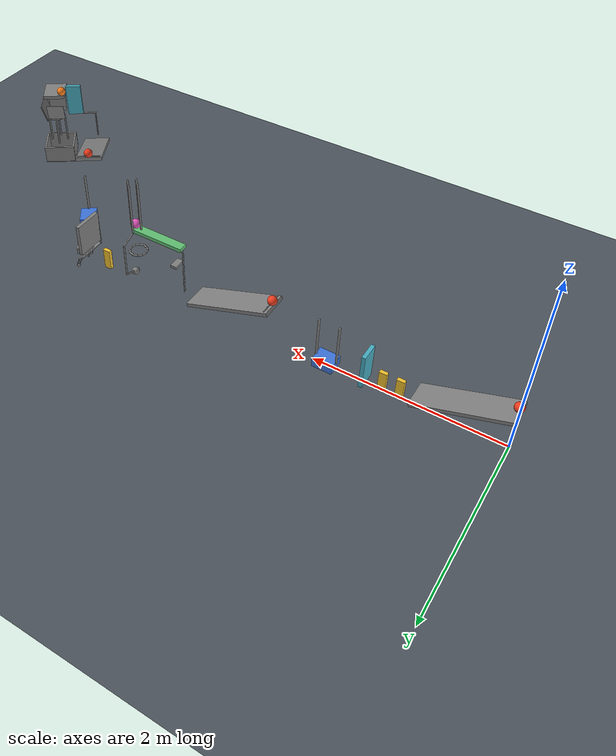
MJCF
<mujoco model="chain_reaction_revised">
  <!-- Complete construction, not simulation-validated. -->
  <!-- Contact override applies friction 0.70 consistently to every contact. -->
  <!-- Contact damping approximates restitution 0.05 rather than specifying it exactly. -->
  <compiler angle="degree" autolimits="true" inertiafromgeom="true"/>
  <option timestep="0.002" gravity="0 0 -9.81" integrator="implicitfast" solver="Newton" iterations="100" tolerance="1e-10" cone="elliptic" o_friction="0.70 0.70 0.005 0.0001 0.0001" o_solref="0.006 0.69" o_solimp="0.95 0.99 0.001">
    <flag override="enable"/>
  </option>
  <size njmax="4000" nconmax="1000"/>

  <worldbody>
    <light name="overhead_light" pos="3 -2 8" dir="0 0 -1"/>
    <camera name="overview" pos="8 -10 7" xyaxes="0.8 0.6 0 -0.3 0.4 0.8660254" fovy="45"/>
    <geom name="floor" type="plane" pos="0 0 0" size="12 8 0.1" rgba="0.30 0.33 0.36 1"/>

    <!-- Each main ramp surface is 1.00 by 0.30 m, inclined 20 degrees. -->
    <!-- All three downhill surface endpoints are at z = 0.15 m. -->
    <body name="ramp1" pos="0.469846 0 0.321010" quat="0.984807753 0 0.173648178 0">
      <geom name="ramp1_surface" type="box" pos="0 0 -0.02" size="0.50 0.15 0.02"/>
    </body>
    <body name="ball1" pos="0.017101 0 0.539005">
      <freejoint name="ball1_free"/>
      <geom name="ball1_sphere" type="sphere" size="0.05" mass="0.20" condim="6" rgba="0.95 0.24 0.12 1"/>
    </body>

    <!-- Ramp1 endpoint to domino1 front face: 0.10 m. -->
    <body name="domino1" pos="1.079693 0 0.12">
      <freejoint name="domino1_free"/>
      <geom name="domino1_box" type="box" size="0.04 0.02 0.12" mass="0.25" rgba="0.95 0.76 0.18 1"/>
    </body>
    <!-- Domino centers are 0.18 m apart. -->
    <body name="domino2" pos="1.259693 0 0.12">
      <freejoint name="domino2_free"/>
      <geom name="domino2_box" type="box" size="0.04 0.02 0.12" mass="0.25" rgba="0.95 0.76 0.18 1"/>
    </body>

    <body name="flap1" pos="1.439693 0 0.02">
      <joint name="flap1_hinge" type="hinge" axis="0 1 0" damping="0.04" limited="true" range="0 65" solreflimit="0.004 1" solimplimit="0.99 0.999 0.0001"/>
      <geom name="flap1_panel" type="box" pos="0 0 0.20" size="0.02 0.10 0.20" mass="0.30" rgba="0.28 0.68 0.76 1"/>
    </body>

    <!-- Cart box and lightweight strikers together have mass 0.50 kg. -->
    <!-- The slide joint represents an ideal horizontal bearing. -->
    <body name="cart1" pos="1.859693 0 0.051">
      <joint name="cart1_slide" type="slide" axis="1 0 0" damping="0.20" limited="true" range="0 0.48" solreflimit="0.004 1"/>
      <geom name="cart1_box" type="box" size="0.11 0.09 0.05" mass="0.48" rgba="0.24 0.46 0.86 1"/>
      <geom name="cart1_rear_striker" type="capsule" fromto="-0.11 0 0.03 -0.11 0 0.50" size="0.012" mass="0.01"/>
      <geom name="cart1_front_striker" type="capsule" fromto="0.11 0 0.03 0.11 0 0.50" size="0.012" mass="0.01"/>
    </body>

    <!-- Small fixed detent retains ball2 until cart1 arrives. -->
    <body name="ramp2" pos="2.934438 0 0.321010" quat="0.984807753 0 0.173648178 0">
      <geom name="ramp2_surface" type="box" pos="0 0 -0.02" size="0.50 0.15 0.02"/>
      <geom name="ramp2_detent" type="capsule" fromto="-0.465359 -0.13 0.006 -0.465359 0.13 0.006" size="0.006"/>
    </body>
    <!-- Nominal cart1 travel to first contact: 0.45 m. -->
    <body name="ball2" pos="2.481693 0 0.539005">
      <freejoint name="ball2_free"/>
      <geom name="ball2_sphere" type="sphere" size="0.05" mass="0.20" condim="6" rgba="0.95 0.24 0.12 1"/>
    </body>

    <!-- The auxiliary left-end paddle bridges the ramp-to-lever height difference. -->
    <!-- Its front surface is 0.12 m beyond ramp2's downhill endpoint. -->
    <!-- Beam and paddle together have mass 0.50 kg. -->
    <body name="lever1" pos="3.824285 0 0.72">
      <joint name="lever1_hinge" type="hinge" axis="0 -1 0" damping="0.04" limited="true" range="0 45" solreflimit="0.004 1" solimplimit="0.99 0.999 0.0001"/>
      <geom name="lever1_beam" type="box" size="0.30 0.05 0.02" mass="0.485" rgba="0.38 0.75 0.45 1"/>
      <geom name="lever1_input_paddle" type="capsule" fromto="-0.292 0 -0.02 -0.292 0 -0.58" size="0.008" mass="0.015"/>
    </body>
    <body name="lever1_lower_stop" pos="3.612153 0 0.478730">
      <geom name="lever1_lower_stop_box" type="box" size="0.035 0.065 0.015"/>
    </body>

    <body name="ball3" pos="4.104285 0 0.79">
      <freejoint name="ball3_free"/>
      <geom name="ball3_sphere" type="sphere" size="0.05" mass="0.20" condim="6" contype="2" conaffinity="3" rgba="0.88 0.34 0.74 1"/>
    </body>

    <!-- Launch rails interact with ball3, not with the lever beneath it. -->
    <body name="launch_guide" pos="4.104285 0 0.79">
      <geom name="launch_guide_x_positive" type="capsule" fromto="0.061 0 -0.06 0.061 0 0.51" size="0.01" contype="2" conaffinity="2"/>
      <geom name="launch_guide_x_negative" type="capsule" fromto="-0.061 0 -0.06 -0.061 0 0.51" size="0.01" contype="2" conaffinity="2"/>
      <geom name="launch_guide_y_positive" type="capsule" fromto="0 0.061 -0.06 0 0.061 0.51" size="0.01" contype="2" conaffinity="2"/>
      <geom name="launch_guide_y_negative" type="capsule" fromto="0 -0.061 -0.06 0 -0.061 0.51" size="0.01" contype="2" conaffinity="2"/>
    </body>

    <!-- Polygonal horizontal ring: 0.09 m centerline apothem and 0.01 m tube radius. -->
    <!-- Minimum clear diameter is 0.16 m; its plane is 0.35 m below ball3 initially. -->
    <body name="ring1" pos="4.104285 0 0.44">
      <geom name="ring1_segment_01" type="capsule" fromto="0.093175 0 0 0.080692 0.046587 0" size="0.01"/>
      <geom name="ring1_segment_02" type="capsule" fromto="0.080692 0.046587 0 0.046587 0.080692 0" size="0.01"/>
      <geom name="ring1_segment_03" type="capsule" fromto="0.046587 0.080692 0 0 0.093175 0" size="0.01"/>
      <geom name="ring1_segment_04" type="capsule" fromto="0 0.093175 0 -0.046587 0.080692 0" size="0.01"/>
      <geom name="ring1_segment_05" type="capsule" fromto="-0.046587 0.080692 0 -0.080692 0.046587 0" size="0.01"/>
      <geom name="ring1_segment_06" type="capsule" fromto="-0.080692 0.046587 0 -0.093175 0 0" size="0.01"/>
      <geom name="ring1_segment_07" type="capsule" fromto="-0.093175 0 0 -0.080692 -0.046587 0" size="0.01"/>
      <geom name="ring1_segment_08" type="capsule" fromto="-0.080692 -0.046587 0 -0.046587 -0.080692 0" size="0.01"/>
      <geom name="ring1_segment_09" type="capsule" fromto="-0.046587 -0.080692 0 0 -0.093175 0" size="0.01"/>
      <geom name="ring1_segment_10" type="capsule" fromto="0 -0.093175 0 0.046587 -0.080692 0" size="0.01"/>
      <geom name="ring1_segment_11" type="capsule" fromto="0.046587 -0.080692 0 0.080692 -0.046587 0" size="0.01"/>
      <geom name="ring1_segment_12" type="capsule" fromto="0.080692 -0.046587 0 0.093175 0 0" size="0.01"/>
    </body>

    <!-- Pivot-to-bob distance: 0.50 m; total rigid-body mass: 0.35 kg. -->
    <!-- The transverse dogleg keeps the rod outside ring1 during the swing. -->
    <!-- Ball3's nominal first bob contact is at center height 0.19 m. -->
    <body name="pendulum1" pos="4.167925 0 0.626360">
      <joint name="pendulum1_hinge" type="hinge" axis="0 -1 0" damping="0.04" limited="true" range="0 40" solreflimit="0.004 1" solimplimit="0.99 0.999 0.0001"/>
      <geom name="pendulum1_upper_link" type="capsule" fromto="0 0 0 0 0.15 -0.06" size="0.009" mass="0.04"/>
      <geom name="pendulum1_middle_link" type="capsule" fromto="0 0.15 -0.06 0 0.15 -0.44" size="0.009" mass="0.24"/>
      <geom name="pendulum1_lower_link" type="capsule" fromto="0 0.15 -0.44 0 0 -0.50" size="0.009" mass="0.04"/>
      <geom name="pendulum1_bob" type="sphere" pos="0 0 -0.50" size="0.04" mass="0.03"/>
    </body>

    <!-- Nominal bob contact occurs after 0.32 m of arc, before the 40-degree limit. -->
    <body name="domino3" pos="4.546523 0 0.12">
      <freejoint name="domino3_free"/>
      <geom name="domino3_box" type="box" size="0.04 0.02 0.12" mass="0.25" rgba="0.95 0.76 0.18 1"/>
    </body>

    <!-- Door panel envelope: 0.42 m high, 0.32 m wide, 0.04 m thick. -->
    <!-- A horizontal release slot occupies z = 0.14 to 0.18 m. -->
    <!-- Panel bottom clears the block rails; the low knocker strikes below the block center. -->
    <!-- All door geometry together has mass 0.45 kg. -->
    <body name="door1" pos="4.786523 -0.16 0.34">
      <joint name="door1_hinge" type="hinge" axis="0 0 -1" damping="0.04" limited="true" range="0 70" solreflimit="0.004 1" solimplimit="0.99 0.999 0.0001"/>
      <geom name="door1_lower_panel" type="box" pos="0 0.16 -0.205" size="0.02 0.16 0.005" mass="0.010"/>
      <geom name="door1_upper_panel" type="box" pos="0 0.16 0.025" size="0.02 0.16 0.185" mass="0.360"/>
      <geom name="door1_edge_frame" type="box" pos="0 0.005 0" size="0.02 0.005 0.21" mass="0.030"/>
      <geom name="door1_knocker_strut" type="capsule" fromto="0 0.18 -0.21 0.03 0.18 -0.295" size="0.003" mass="0.010"/>
      <geom name="door1_knocker" type="sphere" pos="0.03 0.18 -0.295" size="0.01" mass="0.015"/>
      <geom name="door1_hook_arm" type="capsule" fromto="0 0.31 -0.21 0.015 0.36 -0.29" size="0.006" mass="0.010"/>
      <geom name="door1_hook" type="sphere" pos="0.015 0.36 -0.29" size="0.015" mass="0.015"/>
    </body>

    <!-- Domino3 front face to release-bar front surface: 0.18 m. -->
    <!-- The latch initially holds the motor load and releases when its crossbar is struck. -->
    <body name="door_latch" pos="4.824523 0.20 0.01">
      <joint name="door_latch_hinge" type="hinge" axis="0 1 0" damping="0.04" frictionloss="0.25" limited="true" range="0 90" solreflimit="0.004 1"/>
      <geom name="door_latch_pin" type="sphere" pos="0 0 0.04" size="0.008" mass="0.01"/>
      <geom name="door_latch_shank" type="capsule" fromto="0 0 0.04 -0.048 0 0.15" size="0.006" mass="0.04"/>
      <geom name="door_latch_release_bar" type="capsule" fromto="-0.048 -0.225 0.15 -0.048 0 0.15" size="0.01" mass="0.10"/>
    </body>

    <!-- Block and channel are aligned with cart2's slide direction. -->
    <body name="block1" pos="4.954492 -0.087101 0.06" quat="0.887010833 0 0 -0.461748613">
      <freejoint name="block1_free"/>
      <geom name="block1_cube" type="box" size="0.06 0.06 0.06" mass="0.35" rgba="0.79 0.50 0.24 1"/>
    </body>
    <!-- Channel width is 0.124 m; walls terminate before cart2's initial rear face. -->
    <body name="block1_guide" pos="4.954492 -0.087101 0" quat="0.887010833 0 0 -0.461748613">
      <geom name="block1_guide_positive_wall" type="box" pos="0.160 0.072 0.04" size="0.235 0.010 0.040"/>
      <geom name="block1_guide_negative_wall" type="box" pos="0.160 -0.072 0.04" size="0.235 0.010 0.040"/>
    </body>

    <!-- Initial block-front to cart-rear gap along the channel: 0.35 m. -->
    <body name="cart2" pos="5.252751 -0.513060 0.051" quat="0.887010833 0 0 -0.461748613">
      <joint name="cart2_slide" type="slide" axis="1 0 0" damping="0.20" limited="true" range="0 0.45" solreflimit="0.004 1"/>
      <geom name="cart2_box" type="box" size="0.11 0.09 0.05" mass="0.49" rgba="0.24 0.46 0.86 1"/>
      <geom name="cart2_front_striker" type="capsule" fromto="0.11 0 0.03 0.11 0 0.50" size="0.012" mass="0.01"/>
    </body>

    <body name="ramp3" pos="5.851993 -1.368865 0.321010" quat="0.873535146 0.080181805 0.154027815 -0.454733614">
      <geom name="ramp3_surface" type="box" pos="0 0 -0.02" size="0.50 0.15 0.02"/>
      <geom name="ramp3_detent" type="capsule" fromto="-0.465359 -0.13 0.006 -0.465359 0.13 0.006" size="0.006"/>
    </body>
    <!-- Nominal cart2 travel to first contact: 0.42 m. -->
    <body name="ball4" pos="5.592309 -0.997998 0.539005">
      <freejoint name="ball4_free"/>
      <geom name="ball4_sphere" type="sphere" size="0.05" mass="0.20" condim="6" rgba="0.95 0.24 0.12 1"/>
    </body>

    <!-- Ramp3 endpoint to paddle front surface: 0.10 m. -->
    <!-- The hinge-axis crossarm places the striking panel beside the ramp and bin. -->
    <!-- Panel, paddle, and crossarm together have mass 0.28 kg. -->
    <body name="flap2" pos="6.183432 -1.842209 0.46" quat="0.887010833 0 0 -0.461748613">
      <joint name="flap2_hinge" type="hinge" axis="0 -1 0" damping="0.04" limited="true" range="0 60" solreflimit="0.004 1" solimplimit="0.99 0.999 0.0001"/>
      <geom name="flap2_panel" type="box" pos="0 0.24 0.19" size="0.02 0.09 0.19" mass="0.250" rgba="0.28 0.68 0.76 1"/>
      <geom name="flap2_input_paddle" type="capsule" fromto="0 0 -0.02 0 0 -0.32" size="0.008" mass="0.015"/>
      <geom name="flap2_crossarm" type="capsule" fromto="0 0 0 0 0.24 0" size="0.01" mass="0.015"/>
    </body>

    <!-- Shelf dimensions: 0.30 by 0.25 by 0.04 m; top surface z = 0.80 m. -->
    <body name="shelf1" pos="6.551638 -1.566076 0.78" quat="0.887010833 0 0 -0.461748613">
      <geom name="shelf1_plate" type="box" size="0.15 0.125 0.02"/>
    </body>
    <body name="ball5" pos="6.397615 -1.515224 0.85">
      <freejoint name="ball5_free"/>
      <geom name="ball5_sphere" type="sphere" size="0.05" mass="0.20" condim="6" rgba="0.98 0.50 0.10 1"/>
    </body>

    <!-- Ring2 is below the shelf exit region and outside the flap's swept panel. -->
    <!-- Its plane is 0.30 m below ball5's initial center. -->
    <body name="ring2" pos="6.434467 -1.416173 0.55" quat="0.887010833 0 0 -0.461748613">
      <geom name="ring2_segment_01" type="capsule" fromto="0.093175 0 0 0.080692 0.046587 0" size="0.01"/>
      <geom name="ring2_segment_02" type="capsule" fromto="0.080692 0.046587 0 0.046587 0.080692 0" size="0.01"/>
      <geom name="ring2_segment_03" type="capsule" fromto="0.046587 0.080692 0 0 0.093175 0" size="0.01"/>
      <geom name="ring2_segment_04" type="capsule" fromto="0 0.093175 0 -0.046587 0.080692 0" size="0.01"/>
      <geom name="ring2_segment_05" type="capsule" fromto="-0.046587 0.080692 0 -0.080692 0.046587 0" size="0.01"/>
      <geom name="ring2_segment_06" type="capsule" fromto="-0.080692 0.046587 0 -0.093175 0 0" size="0.01"/>
      <geom name="ring2_segment_07" type="capsule" fromto="-0.093175 0 0 -0.080692 -0.046587 0" size="0.01"/>
      <geom name="ring2_segment_08" type="capsule" fromto="-0.080692 -0.046587 0 -0.046587 -0.080692 0" size="0.01"/>
      <geom name="ring2_segment_09" type="capsule" fromto="-0.046587 -0.080692 0 0 -0.093175 0" size="0.01"/>
      <geom name="ring2_segment_10" type="capsule" fromto="0 -0.093175 0 0.046587 -0.080692 0" size="0.01"/>
      <geom name="ring2_segment_11" type="capsule" fromto="0.046587 -0.080692 0 0.080692 -0.046587 0" size="0.01"/>
      <geom name="ring2_segment_12" type="capsule" fromto="0.080692 -0.046587 0 0.093175 0 0" size="0.01"/>
    </body>

    <!-- Three-sided upper capture guide leaves the flap-entry side open. -->
    <!-- X-wall strips begin beyond the striking panel's hinge-axis edge. -->
    <!-- The ring aperture itself remains unobstructed. -->
    <body name="catch_guide" pos="6.434467 -1.416173 0.67" quat="0.887010833 0 0 -0.461748613">
      <geom name="catch_guide_x_positive_wall" type="box" pos="0.117686 -0.015 0" quat="0.991011 0 0.133782 0" size="0.005 0.10 0.103712"/>
      <geom name="catch_guide_x_negative_wall" type="box" pos="-0.117686 -0.015 0" quat="0.991011 0 -0.133782 0" size="0.005 0.10 0.103712"/>
      <geom name="catch_guide_y_positive_wall" type="box" pos="0 0.117686 0" quat="0.991011 -0.133782 0 0" size="0.155 0.005 0.103712"/>
      <geom name="catch_guide_lower_x_positive" type="capsule" fromto="0.096 0 -0.45 0.096 0 -0.15" size="0.01"/>
      <geom name="catch_guide_lower_x_negative" type="capsule" fromto="-0.096 0 -0.45 -0.096 0 -0.15" size="0.01"/>
      <geom name="catch_guide_lower_y_positive" type="capsule" fromto="0 0.096 -0.45 0 0.096 -0.15" size="0.01"/>
      <geom name="catch_guide_lower_y_negative" type="capsule" fromto="0 -0.096 -0.45 0 -0.096 -0.15" size="0.01"/>
    </body>

    <!-- Bin rim is 0.35 m below ring2. -->
    <!-- Inner footprint: 0.32 by 0.32 m; wall height: 0.20 m; wall thickness: 0.02 m. -->
    <!-- The world floor provides the bin collision surface at z = 0. -->
    <body name="bin1" pos="6.434467 -1.416173 0" quat="0.887010833 0 0 -0.461748613">
      <geom name="bin1_base" type="box" pos="0 0 -0.01" size="0.18 0.18 0.01" contype="0" conaffinity="0"/>
      <geom name="bin1_x_positive_wall" type="box" pos="0.17 0 0.10" size="0.01 0.18 0.10"/>
      <geom name="bin1_x_negative_wall" type="box" pos="-0.17 0 0.10" size="0.01 0.18 0.10"/>
      <geom name="bin1_y_positive_wall" type="box" pos="0 0.17 0.10" size="0.16 0.01 0.10"/>
      <geom name="bin1_y_negative_wall" type="box" pos="0 -0.17 0.10" size="0.16 0.01 0.10"/>
    </body>
  </worldbody>

  <actuator>
    <motor name="door1_drive" joint="door1_hinge" gear="1" ctrllimited="true" ctrlrange="0 2.5"/>
  </actuator>

  <keyframe>
    <!-- Omitted qpos uses the compiled initial pose; omitted qvel is zero for every body. -->
    <key name="start" ctrl="2.5"/>
  </keyframe>
</mujoco>
